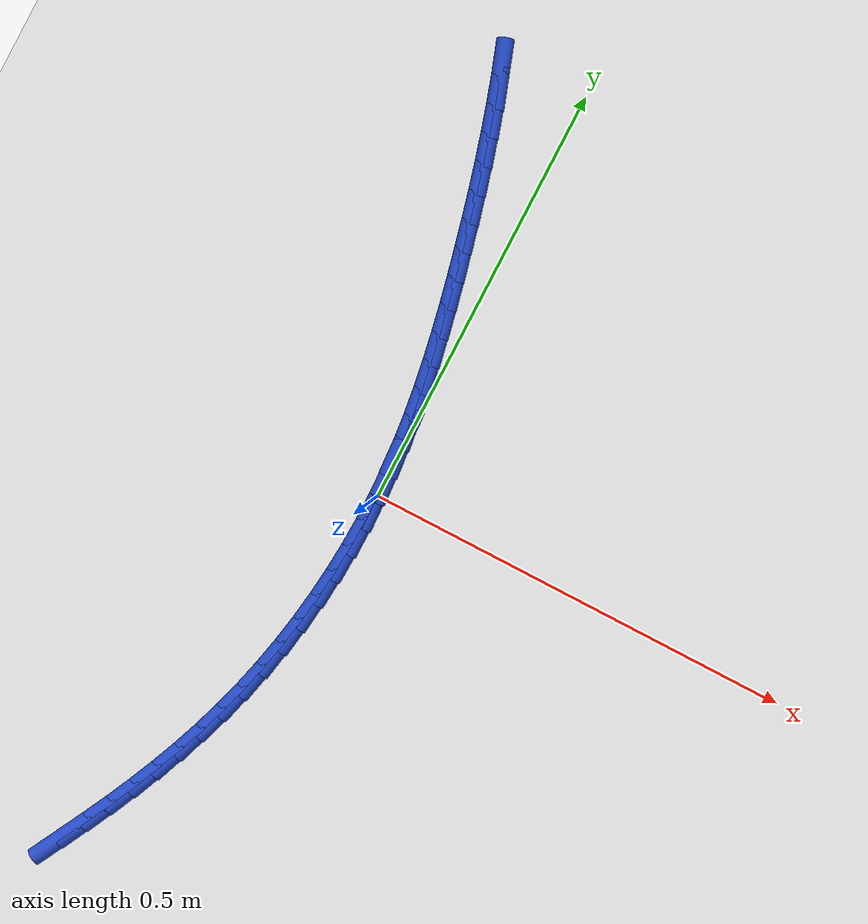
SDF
<sdf version="1.6">
 <world name="default">
  <model name="ground_plane">
   <static>1</static>
   <link name="link">
    <collision name="collision">
     <geometry><plane><normal>0 0 1</normal><size>100 100</size></plane></geometry>
     <surface><friction><ode><mu>100</mu><mu2>50</mu2></ode></friction></surface>
    </collision>
    <visual name="visual">
     <cast_shadows>0</cast_shadows>
     <geometry><plane><normal>0 0 1</normal><size>100 100</size></plane></geometry>
     <material>
      <script><uri>file://media/materials/scripts/gazebo.material</uri><name>Gazebo/WhiteGlow</name></script>
     </material>
    </visual>
   </link>
  </model>
  <model name="line">
   <link name="link_0">
    <pose>1.3877787807814457e-17 -2.7755575615628914e-17 0.01 0 1.57 -1.532613430341726</pose>
    <collision name="collision">
     <geometry><cylinder><radius>0.01</radius><length>0.08</length></cylinder></geometry>
    </collision>
    <visual name="visual">
     <material>
      <script><name>Gazebo/Blue</name><uri>file://media/materials/scripts/gazebo.material</uri></script>
     </material>
     <geometry><cylinder><radius>0.01</radius><length>0.08</length></cylinder></geometry>
    </visual>
   </link>
   <link name="link_1">
    <pose>-0.0012398702655292899 0.03245609350188934 0.01 0 1.57 -1.4978906455337775</pose>
    <collision name="collision">
     <geometry><cylinder><radius>0.01</radius><length>0.08</length></cylinder></geometry>
    </collision>
    <visual name="visual">
     <material>
      <script><name>Gazebo/Blue</name><uri>file://media/materials/scripts/gazebo.material</uri></script>
     </material>
     <geometry><cylinder><radius>0.01</radius><length>0.08</length></cylinder></geometry>
    </visual>
   </link>
   <link name="link_2">
    <pose>-0.0036023476428629813 0.0648032321947696 0.01 0 1.57 -1.4662787933861972</pose>
    <collision name="collision">
     <geometry><cylinder><radius>0.01</radius><length>0.08</length></cylinder></geometry>
    </collision>
    <visual name="visual">
     <material>
      <script><name>Gazebo/Blue</name><uri>file://media/materials/scripts/gazebo.material</uri></script>
     </material>
     <geometry><cylinder><radius>0.01</radius><length>0.08</length></cylinder></geometry>
    </visual>
   </link>
   <link name="link_3">
    <pose>-0.006984441857353037 0.09704442551617311 0.01 0 1.57 -1.4378284325319393</pose>
    <collision name="collision">
     <geometry><cylinder><radius>0.01</radius><length>0.08</length></cylinder></geometry>
    </collision>
    <visual name="visual">
     <material>
      <script><name>Gazebo/Blue</name><uri>file://media/materials/scripts/gazebo.material</uri></script>
     </material>
     <geometry><cylinder><radius>0.01</radius><length>0.08</length></cylinder></geometry>
    </visual>
   </link>
   <link name="link_4">
    <pose>-0.011283162634351406 0.12918268290363222 0.01 0 1.57 -1.4125603410802359</pose>
    <collision name="collision">
     <geometry><cylinder><radius>0.01</radius><length>0.08</length></cylinder></geometry>
    </collision>
    <visual name="visual">
     <material>
      <script><name>Gazebo/Blue</name><uri>file://media/materials/scripts/gazebo.material</uri></script>
     </material>
     <geometry><cylinder><radius>0.01</radius><length>0.08</length></cylinder></geometry>
    </visual>
   </link>
   <link name="link_5">
    <pose>-0.01639551969921005 0.16122101379467924 0.01 0 1.57 -1.3904739414616394</pose>
    <collision name="collision">
     <geometry><cylinder><radius>0.01</radius><length>0.08</length></cylinder></geometry>
    </collision>
    <visual name="visual">
     <material>
      <script><name>Gazebo/Blue</name><uri>file://media/materials/scripts/gazebo.material</uri></script>
     </material>
     <geometry><cylinder><radius>0.01</radius><length>0.08</length></cylinder></geometry>
    </visual>
   </link>
   <link name="link_6">
    <pose>-0.022218522777280942 0.19316242762684652 0.01 0 1.57 -1.371554983965618</pose>
    <collision name="collision">
     <geometry><cylinder><radius>0.01</radius><length>0.08</length></cylinder></geometry>
    </collision>
    <visual name="visual">
     <material>
      <script><name>Gazebo/Blue</name><uri>file://media/materials/scripts/gazebo.material</uri></script>
     </material>
     <geometry><cylinder><radius>0.01</radius><length>0.08</length></cylinder></geometry>
    </visual>
   </link>
   <link name="link_7">
    <pose>-0.02864918159391604 0.22500993383766646 0.01 0 1.57 -1.3557822534866633</pose>
    <collision name="collision">
     <geometry><cylinder><radius>0.01</radius><length>0.08</length></cylinder></geometry>
    </collision>
    <visual name="visual">
     <material>
      <script><name>Gazebo/Blue</name><uri>file://media/materials/scripts/gazebo.material</uri></script>
     </material>
     <geometry><cylinder><radius>0.01</radius><length>0.08</length></cylinder></geometry>
    </visual>
   </link>
   <link name="link_8">
    <pose>-0.0355845058744673 0.2567665418646714 0.01 0 1.57 -1.3431332144721129</pose>
    <collision name="collision">
     <geometry><cylinder><radius>0.01</radius><length>0.08</length></cylinder></geometry>
    </collision>
    <visual name="visual">
     <material>
      <script><name>Gazebo/Blue</name><uri>file://media/materials/scripts/gazebo.material</uri></script>
     </material>
     <geometry><cylinder><radius>0.01</radius><length>0.08</length></cylinder></geometry>
    </visual>
   </link>
   <link name="link_9">
    <pose>-0.042921505344286695 0.2884352611453937 0.01 0 1.57 -1.33315017540428</pose>
    <collision name="collision">
     <geometry><cylinder><radius>0.01</radius><length>0.08</length></cylinder></geometry>
    </collision>
    <visual name="visual">
     <material>
      <script><name>Gazebo/Blue</name><uri>file://media/materials/scripts/gazebo.material</uri></script>
     </material>
     <geometry><cylinder><radius>0.01</radius><length>0.08</length></cylinder></geometry>
    </visual>
   </link>
   <link name="link_10">
    <pose>-0.0505713105957971 0.32001688248115157 0.01 0 1.57 -1.3225812194773876</pose>
    <collision name="collision">
     <geometry><cylinder><radius>0.01</radius><length>0.08</length></cylinder></geometry>
    </collision>
    <visual name="visual">
     <material>
      <script><name>Gazebo/Blue</name><uri>file://media/materials/scripts/gazebo.material</uri></script>
     </material>
     <geometry><cylinder><radius>0.01</radius><length>0.08</length></cylinder></geometry>
    </visual>
   </link>
   <link name="link_11">
    <pose>-0.058549376641268885 0.35149580547471015 0.01 0 1.57 -1.3099661245665832</pose>
    <collision name="collision">
     <geometry><cylinder><radius>0.01</radius><length>0.08</length></cylinder></geometry>
    </collision>
    <visual name="visual">
     <material>
      <script><name>Gazebo/Blue</name><uri>file://media/materials/scripts/gazebo.material</uri></script>
     </material>
     <geometry><cylinder><radius>0.01</radius><length>0.08</length></cylinder></geometry>
    </visual>
   </link>
   <link name="link_12">
    <pose>-0.06691790229256095 0.3828490854569823 0.01 0 1.57 -1.2952901988516587</pose>
    <collision name="collision">
     <geometry><cylinder><radius>0.01</radius><length>0.08</length></cylinder></geometry>
    </collision>
    <visual name="visual">
     <material>
      <script><name>Gazebo/Blue</name><uri>file://media/materials/scripts/gazebo.material</uri></script>
     </material>
     <geometry><cylinder><radius>0.01</radius><length>0.08</length></cylinder></geometry>
    </visual>
   </link>
   <link name="link_13">
    <pose>-0.0757393065360075 0.4140537431656045 0.01 0 1.57 -1.2785478756480453</pose>
    <collision name="collision">
     <geometry><cylinder><radius>0.01</radius><length>0.08</length></cylinder></geometry>
    </collision>
    <visual name="visual">
     <material>
      <script><name>Gazebo/Blue</name><uri>file://media/materials/scripts/gazebo.material</uri></script>
     </material>
     <geometry><cylinder><radius>0.01</radius><length>0.08</length></cylinder></geometry>
    </visual>
   </link>
   <link name="link_14">
    <pose>-0.08507600835794266 0.4450867993382128 0.01 0 1.57 -1.2597377585495069</pose>
    <collision name="collision">
     <geometry><cylinder><radius>0.01</radius><length>0.08</length></cylinder></geometry>
    </collision>
    <visual name="visual">
     <material>
      <script><name>Gazebo/Blue</name><uri>file://media/materials/scripts/gazebo.material</uri></script>
     </material>
     <geometry><cylinder><radius>0.01</radius><length>0.08</length></cylinder></geometry>
    </visual>
   </link>
   <link name="link_15">
    <pose>-0.09499042674470057 0.4759252747124434 0.01 0 1.57 -1.2388647729636164</pose>
    <collision name="collision">
     <geometry><cylinder><radius>0.01</radius><length>0.08</length></cylinder></geometry>
    </collision>
    <visual name="visual">
     <material>
      <script><name>Gazebo/Blue</name><uri>file://media/materials/scripts/gazebo.material</uri></script>
     </material>
     <geometry><cylinder><radius>0.01</radius><length>0.08</length></cylinder></geometry>
    </visual>
   </link>
   <link name="link_194">
    <pose>-0.13467665719960298 -0.4943336372410285 0.01 0 1.57 1.0770711806339448</pose>
    <collision name="collision">
     <geometry><cylinder><radius>0.01</radius><length>0.08</length></cylinder></geometry>
    </collision>
    <visual name="visual">
     <material>
      <script><name>Gazebo/Blue</name><uri>file://media/materials/scripts/gazebo.material</uri></script>
     </material>
     <geometry><cylinder><radius>0.01</radius><length>0.08</length></cylinder></geometry>
    </visual>
   </link>
   <link name="link_195">
    <pose>-0.11921878091828964 -0.46561127672165753 0.01 0 1.57 1.095177134383664</pose>
    <collision name="collision">
     <geometry><cylinder><radius>0.01</radius><length>0.08</length></cylinder></geometry>
    </collision>
    <visual name="visual">
     <material>
      <script><name>Gazebo/Blue</name><uri>file://media/materials/scripts/gazebo.material</uri></script>
     </material>
     <geometry><cylinder><radius>0.01</radius><length>0.08</length></cylinder></geometry>
    </visual>
   </link>
   <link name="link_196">
    <pose>-0.1043758273825656 -0.4367931030995958 0.01 0 1.57 1.1169483271151321</pose>
    <collision name="collision">
     <geometry><cylinder><radius>0.01</radius><length>0.08</length></cylinder></geometry>
    </collision>
    <visual name="visual">
     <material>
      <script><name>Gazebo/Blue</name><uri>file://media/materials/scripts/gazebo.material</uri></script>
     </material>
     <geometry><cylinder><radius>0.01</radius><length>0.08</length></cylinder></geometry>
    </visual>
   </link>
   <link name="link_197">
    <pose>-0.090234604319668 -0.4078038899616001 0.01 0 1.57 1.1423608493459696</pose>
    <collision name="collision">
     <geometry><cylinder><radius>0.01</radius><length>0.08</length></cylinder></geometry>
    </collision>
    <visual name="visual">
     <material>
      <script><name>Gazebo/Blue</name><uri>file://media/materials/scripts/gazebo.material</uri></script>
     </material>
     <geometry><cylinder><radius>0.01</radius><length>0.08</length></cylinder></geometry>
    </visual>
   </link>
   <link name="link_198">
    <pose>-0.0768819194568328 -0.3785684108944247 0.01 0 1.57 1.1713460504082716</pose>
    <collision name="collision">
     <geometry><cylinder><radius>0.01</radius><length>0.08</length></cylinder></geometry>
    </collision>
    <visual name="visual">
     <material>
      <script><name>Gazebo/Blue</name><uri>file://media/materials/scripts/gazebo.material</uri></script>
     </material>
     <geometry><cylinder><radius>0.01</radius><length>0.08</length></cylinder></geometry>
    </visual>
   </link>
   <link name="link_199">
    <pose>-0.06440458052129658 -0.3490114394848254 0.01 0 1.57 1.2037814332927912</pose>
    <collision name="collision">
     <geometry><cylinder><radius>0.01</radius><length>0.08</length></cylinder></geometry>
    </collision>
    <visual name="visual">
     <material>
      <script><name>Gazebo/Blue</name><uri>file://media/materials/scripts/gazebo.material</uri></script>
     </material>
     <geometry><cylinder><radius>0.01</radius><length>0.08</length></cylinder></geometry>
    </visual>
   </link>
   <link name="link_200">
    <pose>-0.052889395240295685 -0.31905774931955727 0.01 0 1.57 1.2394775126439357</pose>
    <collision name="collision">
     <geometry><cylinder><radius>0.01</radius><length>0.08</length></cylinder></geometry>
    </collision>
    <visual name="visual">
     <material>
      <script><name>Gazebo/Blue</name><uri>file://media/materials/scripts/gazebo.material</uri></script>
     </material>
     <geometry><cylinder><radius>0.01</radius><length>0.08</length></cylinder></geometry>
    </visual>
   </link>
   <link name="link_201">
    <pose>-0.04242307129963051 -0.28863230731014067 0.01 0 1.57 1.2771864248855371</pose>
    <collision name="collision">
     <geometry><cylinder><radius>0.01</radius><length>0.08</length></cylinder></geometry>
    </collision>
    <visual name="visual">
     <material>
      <script><name>Gazebo/Blue</name><uri>file://media/materials/scripts/gazebo.material</uri></script>
     </material>
     <geometry><cylinder><radius>0.01</radius><length>0.08</length></cylinder></geometry>
    </visual>
   </link>
   <link name="link_202">
    <pose>-0.03307107724357777 -0.25770112388170974 0.01 0 1.57 1.3146089604505073</pose>
    <collision name="collision">
     <geometry><cylinder><radius>0.01</radius><length>0.08</length></cylinder></geometry>
    </collision>
    <visual name="visual">
     <material>
      <script><name>Gazebo/Blue</name><uri>file://media/materials/scripts/gazebo.material</uri></script>
     </material>
     <geometry><cylinder><radius>0.01</radius><length>0.08</length></cylinder></geometry>
    </visual>
   </link>
   <link name="link_203">
    <pose>-0.02485147936976417 -0.22632181178492844 0.01 0 1.57 1.3515769703096894</pose>
    <collision name="collision">
     <geometry><cylinder><radius>0.01</radius><length>0.08</length></cylinder></geometry>
    </collision>
    <visual name="visual">
     <material>
      <script><name>Gazebo/Blue</name><uri>file://media/materials/scripts/gazebo.material</uri></script>
     </material>
     <geometry><cylinder><radius>0.01</radius><length>0.08</length></cylinder></geometry>
    </visual>
   </link>
   <link name="link_204">
    <pose>-0.017775927828716148 -0.1945643826341575 0.01 0 1.57 1.3882345418339967</pose>
    <collision name="collision">
     <geometry><cylinder><radius>0.01</radius><length>0.08</length></cylinder></geometry>
    </collision>
    <visual name="visual">
     <material>
      <script><name>Gazebo/Blue</name><uri>file://media/materials/scripts/gazebo.material</uri></script>
     </material>
     <geometry><cylinder><radius>0.01</radius><length>0.08</length></cylinder></geometry>
    </visual>
   </link>
   <link name="link_205">
    <pose>-0.011856072770960397 -0.16249884804375866 0.01 0 1.57 1.4247242302290821</pose>
    <collision name="collision">
     <geometry><cylinder><radius>0.01</radius><length>0.08</length></cylinder></geometry>
    </collision>
    <visual name="visual">
     <material>
      <script><name>Gazebo/Blue</name><uri>file://media/materials/scripts/gazebo.material</uri></script>
     </material>
     <geometry><cylinder><radius>0.01</radius><length>0.08</length></cylinder></geometry>
    </visual>
   </link>
   <link name="link_206">
    <pose>-0.007103564347023619 -0.13019521962809347 0.01 0 1.57 1.4611874015514688</pose>
    <collision name="collision">
     <geometry><cylinder><radius>0.01</radius><length>0.08</length></cylinder></geometry>
    </collision>
    <visual name="visual">
     <material>
      <script><name>Gazebo/Blue</name><uri>file://media/materials/scripts/gazebo.material</uri></script>
     </material>
     <geometry><cylinder><radius>0.01</radius><length>0.08</length></cylinder></geometry>
    </visual>
   </link>
   <link name="link_207">
    <pose>-0.003530052707432498 -0.09772350900152339 0.01 0 1.57 1.4977646186170113</pose>
    <collision name="collision">
     <geometry><cylinder><radius>0.01</radius><length>0.08</length></cylinder></geometry>
    </collision>
    <visual name="visual">
     <material>
      <script><name>Gazebo/Blue</name><uri>file://media/materials/scripts/gazebo.material</uri></script>
     </material>
     <geometry><cylinder><radius>0.01</radius><length>0.08</length></cylinder></geometry>
    </visual>
   </link>
   <link name="link_208">
    <pose>-0.0011471880027137263 -0.06515372777841014 0.01 0 1.57 1.5345960181131786</pose>
    <collision name="collision">
     <geometry><cylinder><radius>0.01</radius><length>0.08</length></cylinder></geometry>
    </collision>
    <visual name="visual">
     <material>
      <script><name>Gazebo/Blue</name><uri>file://media/materials/scripts/gazebo.material</uri></script>
     </material>
     <geometry><cylinder><radius>0.01</radius><length>0.08</length></cylinder></geometry>
    </visual>
   </link>
   <link name="link_209">
    <pose>3.337961660602497e-05 -0.0325558875731144 0.01 0 1.57 -1.5697710251552364</pose>
    <collision name="collision">
     <geometry><cylinder><radius>0.01</radius><length>0.08</length></cylinder></geometry>
    </collision>
    <visual name="visual">
     <material>
      <script><name>Gazebo/Blue</name><uri>file://media/materials/scripts/gazebo.material</uri></script>
     </material>
     <geometry><cylinder><radius>0.01</radius><length>0.08</length></cylinder></geometry>
    </visual>
   </link>
   <link name="link_210">
    <pose>1.6479873021779667e-17 -9.71445146547012e-17 0.01 0 1.57 -1.53201107767734</pose>
    <collision name="collision">
     <geometry><cylinder><radius>0.01</radius><length>0.08</length></cylinder></geometry>
    </collision>
    <visual name="visual">
     <material>
      <script><name>Gazebo/Blue</name><uri>file://media/materials/scripts/gazebo.material</uri></script>
     </material>
     <geometry><cylinder><radius>0.01</radius><length>0.08</length></cylinder></geometry>
    </visual>
   </link>
   <link name="link_211">
    <pose>-0.0012589770030583987 0.03244392332657348 0.01 0 1.57 -1.4935765311598803</pose>
    <collision name="collision">
     <geometry><cylinder><radius>0.01</radius><length>0.08</length></cylinder></geometry>
    </collision>
    <visual name="visual">
     <material>
      <script><name>Gazebo/Blue</name><uri>file://media/materials/scripts/gazebo.material</uri></script>
     </material>
     <geometry><cylinder><radius>0.01</radius><length>0.08</length></cylinder></geometry>
    </visual>
   </link>
   <link name="link_212">
    <pose>-0.003755201543096068 0.06470587079224553 0.01 0 1.57 -1.5128264070894282</pose>
    <collision name="collision">
     <geometry><cylinder><radius>0.01</radius><length>0.08</length></cylinder></geometry>
    </collision>
    <visual name="visual">
     <material>
      <script><name>Gazebo/Blue</name><uri>file://media/materials/scripts/gazebo.material</uri></script>
     </material>
     <geometry><cylinder><radius>0.01</radius><length>0.08</length></cylinder></geometry>
    </visual>
   </link>
  </model>
 </world>
</sdf>
